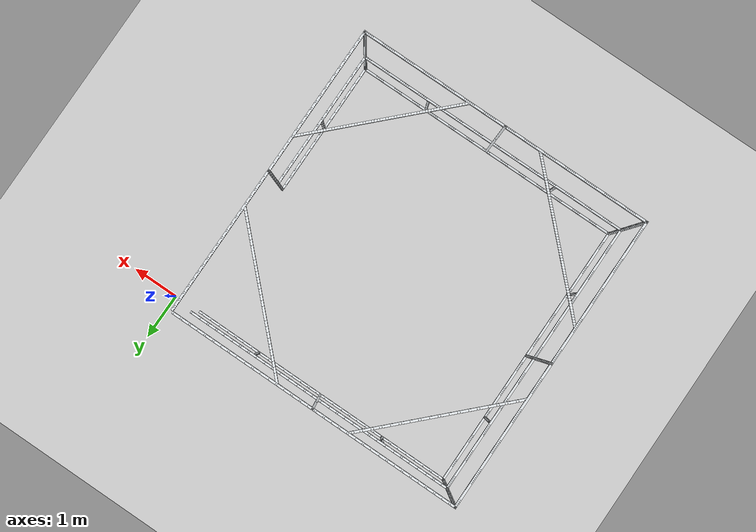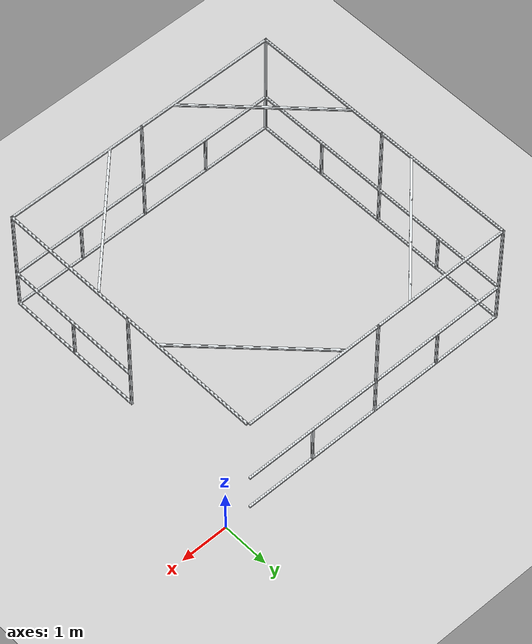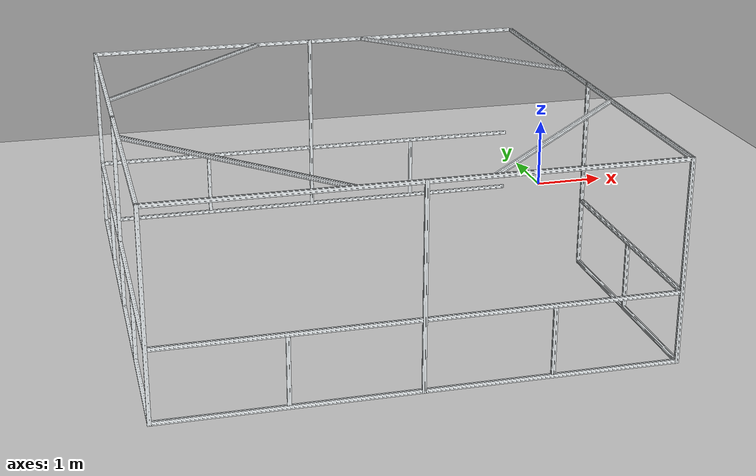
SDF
<sdf version="1.6">
 <world name="default">
  <light name="sun" type="directional">
   <cast_shadows>0</cast_shadows>
   <pose>0 0 10 0 -0 0</pose>
   <diffuse>0.8 0.8 0.8 1</diffuse>
   <specular>0.2 0.2 0.2 1</specular>
   <attenuation>
    <range>1000</range>
    <constant>0.9</constant>
    <linear>0.01</linear>
    <quadratic>0.001</quadratic>
   </attenuation>
   <direction>-0.5 0.1 -0.9</direction>
  </light>
  <include><uri>model://ground_plane</uri></include>
  <gravity>0 0 -9.8</gravity>
  <magnetic_field>6e-06 2.3e-05 -4.2e-05</magnetic_field>
  <atmosphere type="adiabatic"/>
  <physics name="default_physics" default="0" type="ode">
   <max_step_size>0.001</max_step_size>
   <real_time_factor>1</real_time_factor>
   <real_time_update_rate>1000</real_time_update_rate>
  </physics>
  <scene><ambient>0.4 0.4 0.4 1</ambient><background>0.7 0.7 0.7 1</background><shadows>0</shadows></scene>
  <spherical_coordinates>
   <surface_model>EARTH_WGS84</surface_model>
   <latitude_deg>0</latitude_deg>
   <longitude_deg>0</longitude_deg>
   <elevation>0</elevation>
   <heading_deg>0</heading_deg>
  </spherical_coordinates>
  <model name="Body1.038">
   <static>true</static>
   <link name="link_">
    <collision name="collision_Body1.038">
     <geometry><mesh><uri>model://REEL/models/Body1.038.dae</uri></mesh></geometry>
    </collision>
    <visual name="visual_Body1.038">
     <geometry><mesh><uri>model://REEL/models/Body1.038.dae</uri></mesh></geometry>
    </visual>
   </link>
  </model>
  <model name="Body1.005">
   <static>true</static>
   <link name="link_">
    <collision name="collision_Body1.005">
     <geometry><mesh><uri>model://REEL/models/Body1.005.dae</uri></mesh></geometry>
    </collision>
    <visual name="visual_Body1.005">
     <geometry><mesh><uri>model://REEL/models/Body1.005.dae</uri></mesh></geometry>
    </visual>
   </link>
  </model>
  <model name="Body1.016">
   <static>true</static>
   <link name="link_">
    <collision name="collision_Body1.016">
     <geometry><mesh><uri>model://REEL/models/Body1.016.dae</uri></mesh></geometry>
    </collision>
    <visual name="visual_Body1.016">
     <geometry><mesh><uri>model://REEL/models/Body1.016.dae</uri></mesh></geometry>
    </visual>
   </link>
  </model>
  <model name="Body1.032">
   <static>true</static>
   <link name="link_">
    <collision name="collision_Body1.032">
     <geometry><mesh><uri>model://REEL/models/Body1.032.dae</uri></mesh></geometry>
    </collision>
    <visual name="visual_Body1.032">
     <geometry><mesh><uri>model://REEL/models/Body1.032.dae</uri></mesh></geometry>
    </visual>
   </link>
  </model>
  <model name="Body1.022">
   <static>true</static>
   <link name="link_">
    <collision name="collision_Body1.022">
     <geometry><mesh><uri>model://REEL/models/Body1.022.dae</uri></mesh></geometry>
    </collision>
    <visual name="visual_Body1.022">
     <geometry><mesh><uri>model://REEL/models/Body1.022.dae</uri></mesh></geometry>
    </visual>
   </link>
  </model>
  <model name="Body1.029">
   <static>true</static>
   <link name="link_">
    <collision name="collision_Body1.029">
     <geometry><mesh><uri>model://REEL/models/Body1.029.dae</uri></mesh></geometry>
    </collision>
    <visual name="visual_Body1.029">
     <geometry><mesh><uri>model://REEL/models/Body1.029.dae</uri></mesh></geometry>
    </visual>
   </link>
  </model>
  <model name="Body1.006">
   <static>true</static>
   <link name="link_">
    <collision name="collision_Body1.006">
     <geometry><mesh><uri>model://REEL/models/Body1.006.dae</uri></mesh></geometry>
    </collision>
    <visual name="visual_Body1.006">
     <geometry><mesh><uri>model://REEL/models/Body1.006.dae</uri></mesh></geometry>
    </visual>
   </link>
  </model>
  <model name="Body1.023">
   <static>true</static>
   <link name="link_">
    <collision name="collision_Body1.023">
     <geometry><mesh><uri>model://REEL/models/Body1.023.dae</uri></mesh></geometry>
    </collision>
    <visual name="visual_Body1.023">
     <geometry><mesh><uri>model://REEL/models/Body1.023.dae</uri></mesh></geometry>
    </visual>
   </link>
  </model>
  <model name="Body1.003">
   <static>true</static>
   <link name="link_">
    <collision name="collision_Body1.003">
     <geometry><mesh><uri>model://REEL/models/Body1.003.dae</uri></mesh></geometry>
    </collision>
    <visual name="visual_Body1.003">
     <geometry><mesh><uri>model://REEL/models/Body1.003.dae</uri></mesh></geometry>
    </visual>
   </link>
  </model>
  <model name="Body1.031">
   <static>true</static>
   <link name="link_">
    <collision name="collision_Body1.031">
     <geometry><mesh><uri>model://REEL/models/Body1.031.dae</uri></mesh></geometry>
    </collision>
    <visual name="visual_Body1.031">
     <geometry><mesh><uri>model://REEL/models/Body1.031.dae</uri></mesh></geometry>
    </visual>
   </link>
  </model>
  <model name="Body1.025">
   <static>true</static>
   <link name="link_">
    <collision name="collision_Body1.025">
     <geometry><mesh><uri>model://REEL/models/Body1.025.dae</uri></mesh></geometry>
    </collision>
    <visual name="visual_Body1.025">
     <geometry><mesh><uri>model://REEL/models/Body1.025.dae</uri></mesh></geometry>
    </visual>
   </link>
  </model>
  <model name="Body1.017">
   <static>true</static>
   <link name="link_">
    <collision name="collision_Body1.017">
     <geometry><mesh><uri>model://REEL/models/Body1.017.dae</uri></mesh></geometry>
    </collision>
    <visual name="visual_Body1.017">
     <geometry><mesh><uri>model://REEL/models/Body1.017.dae</uri></mesh></geometry>
    </visual>
   </link>
  </model>
  <model name="Body1.008">
   <static>true</static>
   <link name="link_">
    <collision name="collision_Body1.008">
     <geometry><mesh><uri>model://REEL/models/Body1.008.dae</uri></mesh></geometry>
    </collision>
    <visual name="visual_Body1.008">
     <geometry><mesh><uri>model://REEL/models/Body1.008.dae</uri></mesh></geometry>
    </visual>
   </link>
  </model>
  <model name="Body1.014">
   <static>true</static>
   <link name="link_">
    <collision name="collision_Body1.014">
     <geometry><mesh><uri>model://REEL/models/Body1.014.dae</uri></mesh></geometry>
    </collision>
    <visual name="visual_Body1.014">
     <geometry><mesh><uri>model://REEL/models/Body1.014.dae</uri></mesh></geometry>
    </visual>
   </link>
  </model>
  <model name="Body1.009">
   <static>true</static>
   <link name="link_">
    <collision name="collision_Body1.009">
     <geometry><mesh><uri>model://REEL/models/Body1.009.dae</uri></mesh></geometry>
    </collision>
    <visual name="visual_Body1.009">
     <geometry><mesh><uri>model://REEL/models/Body1.009.dae</uri></mesh></geometry>
    </visual>
   </link>
  </model>
  <model name="Body1.036">
   <static>true</static>
   <link name="link_">
    <collision name="collision_Body1.036">
     <geometry><mesh><uri>model://REEL/models/Body1.036.dae</uri></mesh></geometry>
    </collision>
    <visual name="visual_Body1.036">
     <geometry><mesh><uri>model://REEL/models/Body1.036.dae</uri></mesh></geometry>
    </visual>
   </link>
  </model>
  <model name="Body1.007">
   <static>true</static>
   <link name="link_">
    <collision name="collision_Body1.007">
     <geometry><mesh><uri>model://REEL/models/Body1.007.dae</uri></mesh></geometry>
    </collision>
    <visual name="visual_Body1.007">
     <geometry><mesh><uri>model://REEL/models/Body1.007.dae</uri></mesh></geometry>
    </visual>
   </link>
  </model>
  <model name="Body1.039">
   <static>true</static>
   <link name="link_">
    <collision name="collision_Body1.039">
     <geometry><mesh><uri>model://REEL/models/Body1.039.dae</uri></mesh></geometry>
    </collision>
    <visual name="visual_Body1.039">
     <geometry><mesh><uri>model://REEL/models/Body1.039.dae</uri></mesh></geometry>
    </visual>
   </link>
  </model>
  <model name="Body1.037">
   <static>true</static>
   <link name="link_">
    <collision name="collision_Body1.037">
     <geometry><mesh><uri>model://REEL/models/Body1.037.dae</uri></mesh></geometry>
    </collision>
    <visual name="visual_Body1.037">
     <geometry><mesh><uri>model://REEL/models/Body1.037.dae</uri></mesh></geometry>
    </visual>
   </link>
  </model>
  <model name="Body1.001">
   <static>true</static>
   <link name="link_">
    <collision name="collision_Body1.001">
     <geometry><mesh><uri>model://REEL/models/Body1.001.dae</uri></mesh></geometry>
    </collision>
    <visual name="visual_Body1.001">
     <geometry><mesh><uri>model://REEL/models/Body1.001.dae</uri></mesh></geometry>
    </visual>
   </link>
  </model>
  <model name="Body1.015">
   <static>true</static>
   <link name="link_">
    <collision name="collision_Body1.015">
     <geometry><mesh><uri>model://REEL/models/Body1.015.dae</uri></mesh></geometry>
    </collision>
    <visual name="visual_Body1.015">
     <geometry><mesh><uri>model://REEL/models/Body1.015.dae</uri></mesh></geometry>
    </visual>
   </link>
  </model>
  <model name="Body1.011">
   <static>true</static>
   <link name="link_">
    <collision name="collision_Body1.011">
     <geometry><mesh><uri>model://REEL/models/Body1.011.dae</uri></mesh></geometry>
    </collision>
    <visual name="visual_Body1.011">
     <geometry><mesh><uri>model://REEL/models/Body1.011.dae</uri></mesh></geometry>
    </visual>
   </link>
  </model>
  <model name="Body1.020">
   <static>true</static>
   <link name="link_">
    <collision name="collision_Body1.020">
     <geometry><mesh><uri>model://REEL/models/Body1.020.dae</uri></mesh></geometry>
    </collision>
    <visual name="visual_Body1.020">
     <geometry><mesh><uri>model://REEL/models/Body1.020.dae</uri></mesh></geometry>
    </visual>
   </link>
  </model>
  <model name="Body1.013">
   <static>true</static>
   <link name="link_">
    <collision name="collision_Body1.013">
     <geometry><mesh><uri>model://REEL/models/Body1.013.dae</uri></mesh></geometry>
    </collision>
    <visual name="visual_Body1.013">
     <geometry><mesh><uri>model://REEL/models/Body1.013.dae</uri></mesh></geometry>
    </visual>
   </link>
  </model>
  <model name="Body1.024">
   <static>true</static>
   <link name="link_">
    <collision name="collision_Body1.024">
     <geometry><mesh><uri>model://REEL/models/Body1.024.dae</uri></mesh></geometry>
    </collision>
    <visual name="visual_Body1.024">
     <geometry><mesh><uri>model://REEL/models/Body1.024.dae</uri></mesh></geometry>
    </visual>
   </link>
  </model>
  <model name="Body1.026">
   <static>true</static>
   <link name="link_">
    <collision name="collision_Body1.026">
     <geometry><mesh><uri>model://REEL/models/Body1.026.dae</uri></mesh></geometry>
    </collision>
    <visual name="visual_Body1.026">
     <geometry><mesh><uri>model://REEL/models/Body1.026.dae</uri></mesh></geometry>
    </visual>
   </link>
  </model>
  <model name="Body1.035">
   <static>true</static>
   <link name="link_">
    <collision name="collision_Body1.035">
     <geometry><mesh><uri>model://REEL/models/Body1.035.dae</uri></mesh></geometry>
    </collision>
    <visual name="visual_Body1.035">
     <geometry><mesh><uri>model://REEL/models/Body1.035.dae</uri></mesh></geometry>
    </visual>
   </link>
  </model>
  <model name="Body1.004">
   <static>true</static>
   <link name="link_">
    <collision name="collision_Body1.004">
     <geometry><mesh><uri>model://REEL/models/Body1.004.dae</uri></mesh></geometry>
    </collision>
    <visual name="visual_Body1.004">
     <geometry><mesh><uri>model://REEL/models/Body1.004.dae</uri></mesh></geometry>
    </visual>
   </link>
  </model>
  <model name="Body1.021">
   <static>true</static>
   <link name="link_">
    <collision name="collision_Body1.021">
     <geometry><mesh><uri>model://REEL/models/Body1.021.dae</uri></mesh></geometry>
    </collision>
    <visual name="visual_Body1.021">
     <geometry><mesh><uri>model://REEL/models/Body1.021.dae</uri></mesh></geometry>
    </visual>
   </link>
  </model>
  <model name="Body1.040">
   <static>true</static>
   <link name="link_">
    <collision name="collision_Body1.040">
     <geometry><mesh><uri>model://REEL/models/Body1.040.dae</uri></mesh></geometry>
    </collision>
    <visual name="visual_Body1.040">
     <geometry><mesh><uri>model://REEL/models/Body1.040.dae</uri></mesh></geometry>
    </visual>
   </link>
  </model>
  <model name="Body1.019">
   <static>true</static>
   <link name="link_">
    <collision name="collision_Body1.019">
     <geometry><mesh><uri>model://REEL/models/Body1.019.dae</uri></mesh></geometry>
    </collision>
    <visual name="visual_Body1.019">
     <geometry><mesh><uri>model://REEL/models/Body1.019.dae</uri></mesh></geometry>
    </visual>
   </link>
  </model>
  <model name="Body1.018">
   <static>true</static>
   <link name="link_">
    <collision name="collision_Body1.018">
     <geometry><mesh><uri>model://REEL/models/Body1.018.dae</uri></mesh></geometry>
    </collision>
    <visual name="visual_Body1.018">
     <geometry><mesh><uri>model://REEL/models/Body1.018.dae</uri></mesh></geometry>
    </visual>
   </link>
  </model>
  <model name="Body1.028">
   <static>true</static>
   <link name="link_">
    <collision name="collision_Body1.028">
     <geometry><mesh><uri>model://REEL/models/Body1.028.dae</uri></mesh></geometry>
    </collision>
    <visual name="visual_Body1.028">
     <geometry><mesh><uri>model://REEL/models/Body1.028.dae</uri></mesh></geometry>
    </visual>
   </link>
  </model>
  <model name="Body1.027">
   <static>true</static>
   <link name="link_">
    <collision name="collision_Body1.027">
     <geometry><mesh><uri>model://REEL/models/Body1.027.dae</uri></mesh></geometry>
    </collision>
    <visual name="visual_Body1.027">
     <geometry><mesh><uri>model://REEL/models/Body1.027.dae</uri></mesh></geometry>
    </visual>
   </link>
  </model>
  <model name="Body1.010">
   <static>true</static>
   <link name="link_">
    <collision name="collision_Body1.010">
     <geometry><mesh><uri>model://REEL/models/Body1.010.dae</uri></mesh></geometry>
    </collision>
    <visual name="visual_Body1.010">
     <geometry><mesh><uri>model://REEL/models/Body1.010.dae</uri></mesh></geometry>
    </visual>
   </link>
  </model>
  <model name="Body1.002">
   <static>true</static>
   <link name="link_">
    <collision name="collision_Body1.002">
     <geometry><mesh><uri>model://REEL/models/Body1.002.dae</uri></mesh></geometry>
    </collision>
    <visual name="visual_Body1.002">
     <geometry><mesh><uri>model://REEL/models/Body1.002.dae</uri></mesh></geometry>
    </visual>
   </link>
  </model>
  <model name="Body1.034">
   <static>true</static>
   <link name="link_">
    <collision name="collision_Body1.034">
     <geometry><mesh><uri>model://REEL/models/Body1.034.dae</uri></mesh></geometry>
    </collision>
    <visual name="visual_Body1.034">
     <geometry><mesh><uri>model://REEL/models/Body1.034.dae</uri></mesh></geometry>
    </visual>
   </link>
  </model>
  <model name="Body1.033">
   <static>true</static>
   <link name="link_">
    <collision name="collision_Body1.033">
     <geometry><mesh><uri>model://REEL/models/Body1.033.dae</uri></mesh></geometry>
    </collision>
    <visual name="visual_Body1.033">
     <geometry><mesh><uri>model://REEL/models/Body1.033.dae</uri></mesh></geometry>
    </visual>
   </link>
  </model>
  <model name="Body1.012">
   <static>true</static>
   <link name="link_">
    <collision name="collision_Body1.012">
     <geometry><mesh><uri>model://REEL/models/Body1.012.dae</uri></mesh></geometry>
    </collision>
    <visual name="visual_Body1.012">
     <geometry><mesh><uri>model://REEL/models/Body1.012.dae</uri></mesh></geometry>
    </visual>
   </link>
  </model>
  <model name="Body1.030">
   <static>true</static>
   <link name="link_">
    <collision name="collision_Body1.030">
     <geometry><mesh><uri>model://REEL/models/Body1.030.dae</uri></mesh></geometry>
    </collision>
    <visual name="visual_Body1.030">
     <geometry><mesh><uri>model://REEL/models/Body1.030.dae</uri></mesh></geometry>
    </visual>
   </link>
  </model>
 </world>
</sdf>
